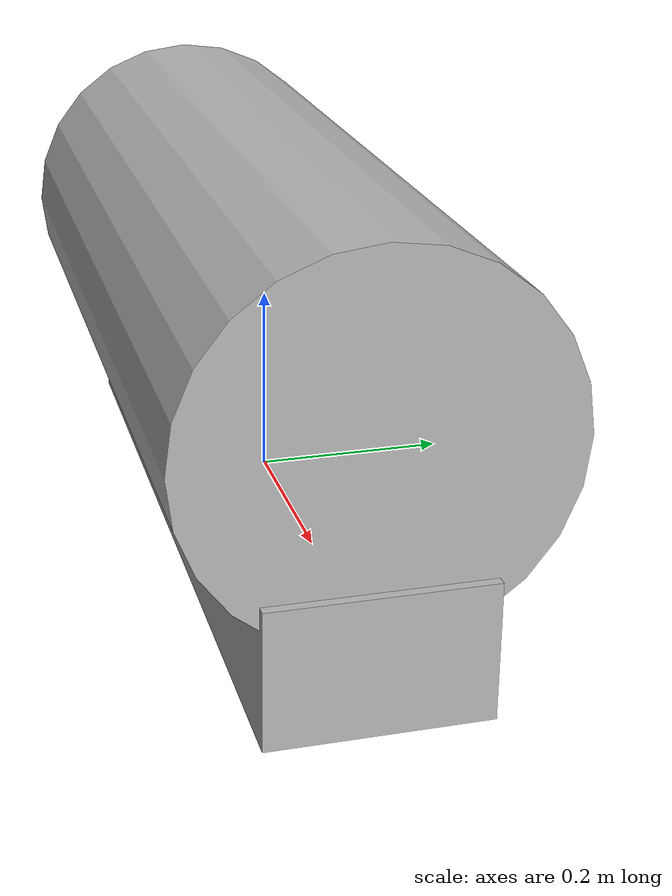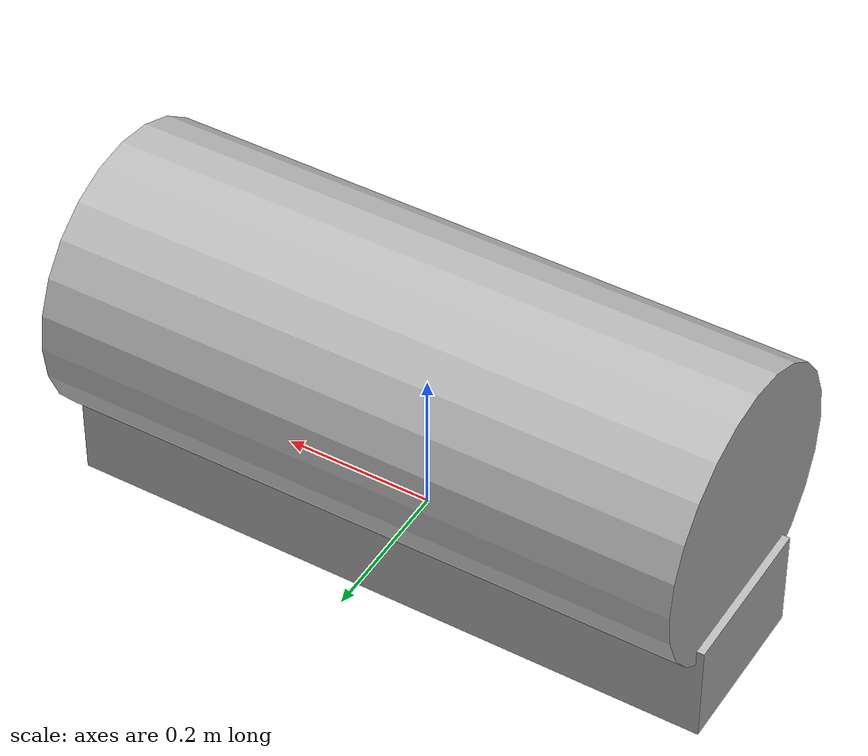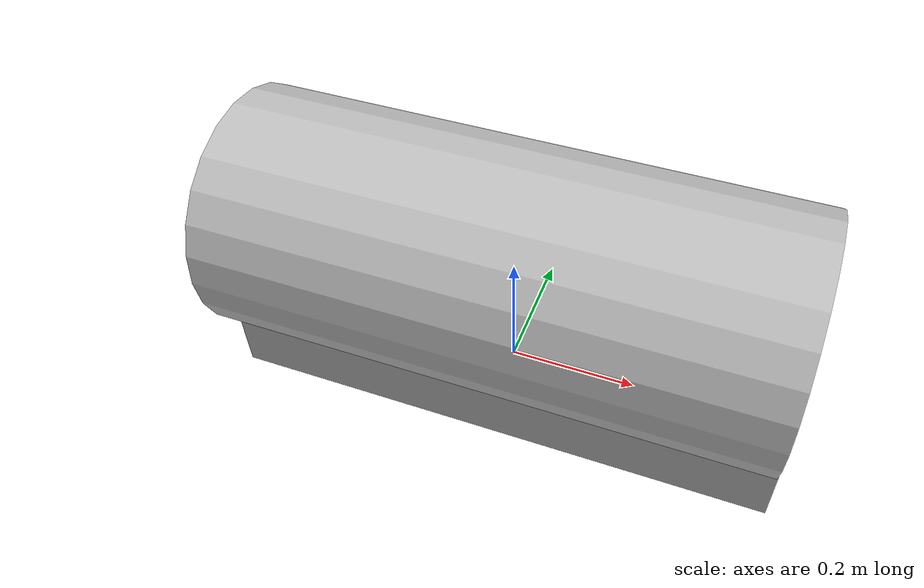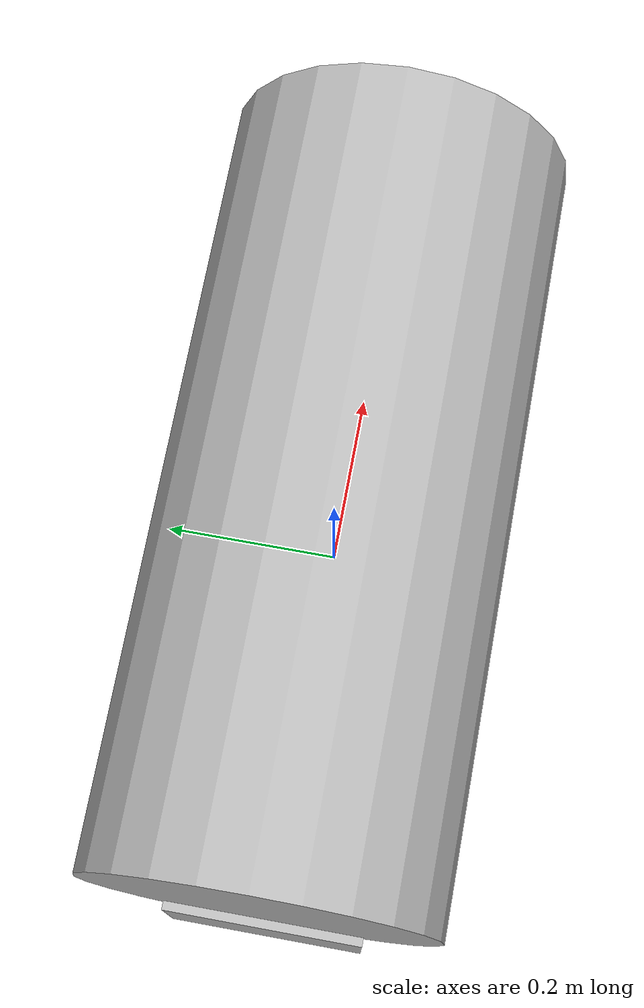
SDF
<?xml version='1.0'?>
<sdf version="1.9">
<world name="auv">
    <static>false</static>

    <model name="auv_link">
        <static>false</static>

        <link name="auv_cylinder">

            <collision name="auv_cylinder_collsion">
                <pose> 0 0 0.2 0 1.57 0</pose>
                <geometry>
                     <cylinder>
                         <radius>.19</radius>
                         <length>.86</length>
                     </cylinder>>
                 </geometry>
             </collision>

            <visual name="auv_cylinder_visual">
                <pose> 0 0 0.2 0 1.57 0</pose>
                <geometry>
                    <cylinder>
                        <radius>.19</radius>
                        <length>.86</length>
                    </cylinder>>
                </geometry>
            </visual>

            <inertial>
                <mass>12.0</mass>
                    <inertia>
                    <ixx>.9159</ixx>
                    <ixy>0.0</ixy>
                    <ixz>0.0</ixz>
                    <iyy>1.0106</iyy>
                    <iyz>0.0</iyz>
                    <izz>1.6706</izz>
                    </inertia>
            </inertial>

        </link>

        <link name="auv_box">

            <collision name="auv_box_collision">
                <pose> 0 0 0 0 0 0 </pose>
               <geometry>
                    <box>
                        <size>.88 .22 .14</size>
                    </box>>
                </geometry>
            </collision>

            <visual name="auv_box_visual">
                <pose> 0 0 0 0 0 0 </pose>
                <geometry>
                    <box>
                        <size>.88 .22 .14</size>
                    </box>>
                </geometry>
            </visual>

            <inertial>
                <mass>12.0</mass>
                    <inertia>
                    <ixx>.068</ixx>
                    <ixy>0.0</ixy>
                    <ixz>0.0</ixz>
                    <iyy>.7994</iyy>
                    <iyz>0.0</iyz>
                    <izz>.8228</izz>
                    </inertia>
            </inertial>

        </link>

        <joint type="fixed" name="cylinder_to_box">
            <pose>0 0 0 0 0 0</pose>
            <child>auv_box</child>
            <parent>auv_cylinder</parent>
            <axis>
                <xyz>0 0 0.2</xyz>
            </axis>
        </joint>

    </model>

</world>

</sdf>
